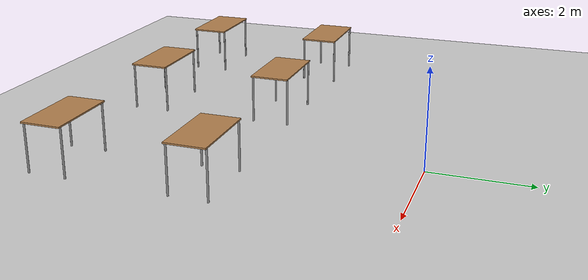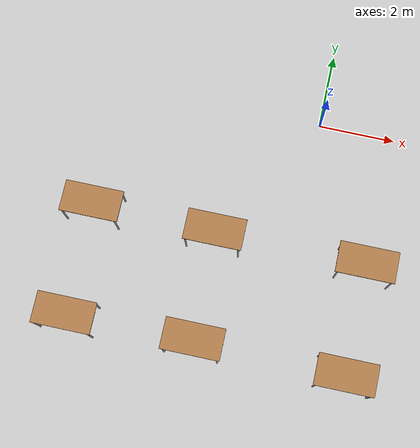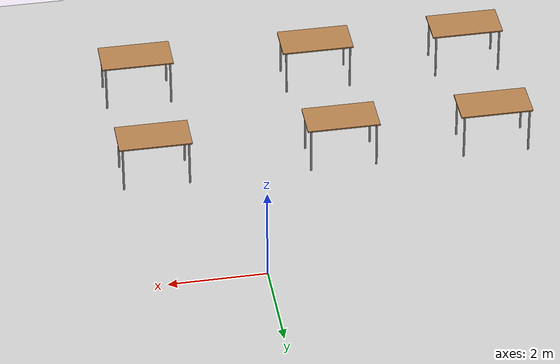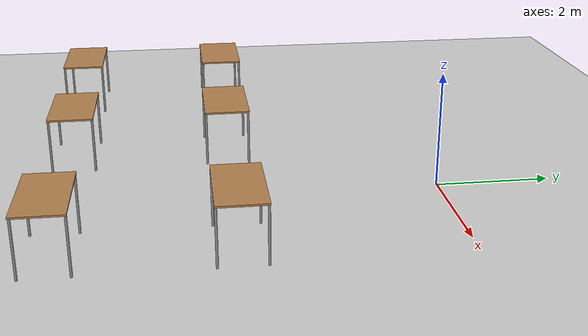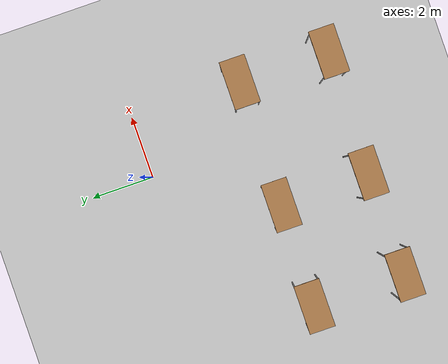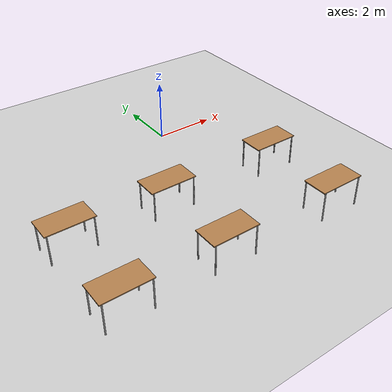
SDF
<sdf version="1.6">
 <world name="default">
  <model name="ground_plane">
   <static>1</static>
   <link name="link">
    <collision name="collision">
     <geometry><plane><normal>0 0 1</normal><size>100 100</size></plane></geometry>
     <surface>
      <contact><collide_bitmask>65535</collide_bitmask></contact>
      <friction><ode><mu>100</mu><mu2>50</mu2></ode></friction>
     </surface>
    </collision>
    <visual name="visual">
     <cast_shadows>0</cast_shadows>
     <geometry><plane><normal>0 0 1</normal><size>100 100</size></plane></geometry>
     <material>
      <script><uri>file://media/materials/scripts/gazebo.material</uri><name>Gazebo/Grey</name></script>
     </material>
    </visual>
   </link>
  </model>
  <model name="table_3">
   <static>1</static>
   <link name="link">
    <collision name="surface">
     <pose>0 0 1 0 -0 0</pose>
     <geometry><box><size>1.5 0.8 0.03</size></box></geometry>
     <surface><friction><ode><mu>0.6</mu><mu2>0.6</mu2></ode></friction></surface>
    </collision>
    <visual name="visual1">
     <pose>0 0 1 0 -0 0</pose>
     <geometry><box><size>1.5 0.8 0.03</size></box></geometry>
     <material>
      <script><uri>file://media/materials/scripts/gazebo.material</uri><name>Gazebo/Wood</name></script>
     </material>
    </visual>
    <collision name="front_left_leg">
     <pose>0.68 0.38 0.5 0 -0 0</pose>
     <geometry><cylinder><radius>0.02</radius><length>1</length></cylinder></geometry>
    </collision>
    <visual name="front_left_leg">
     <pose>0.68 0.38 0.5 0 -0 0</pose>
     <geometry><cylinder><radius>0.02</radius><length>1</length></cylinder></geometry>
     <material>
      <script><uri>file://media/materials/scripts/gazebo.material</uri><name>Gazebo/Grey</name></script>
     </material>
    </visual>
    <collision name="front_right_leg">
     <pose>0.68 -0.38 0.5 0 -0 0</pose>
     <geometry><cylinder><radius>0.02</radius><length>1</length></cylinder></geometry>
    </collision>
    <visual name="front_right_leg">
     <pose>0.68 -0.38 0.5 0 -0 0</pose>
     <geometry><cylinder><radius>0.02</radius><length>1</length></cylinder></geometry>
     <material>
      <script><uri>file://media/materials/scripts/gazebo.material</uri><name>Gazebo/Grey</name></script>
     </material>
    </visual>
    <collision name="back_right_leg">
     <pose>-0.68 -0.38 0.5 0 -0 0</pose>
     <geometry><cylinder><radius>0.02</radius><length>1</length></cylinder></geometry>
    </collision>
    <visual name="back_right_leg">
     <pose>-0.68 -0.38 0.5 0 -0 0</pose>
     <geometry><cylinder><radius>0.02</radius><length>1</length></cylinder></geometry>
     <material>
      <script><uri>file://media/materials/scripts/gazebo.material</uri><name>Gazebo/Grey</name></script>
     </material>
    </visual>
    <collision name="back_left_leg">
     <pose>-0.68 0.38 0.5 0 -0 0</pose>
     <geometry><cylinder><radius>0.02</radius><length>1</length></cylinder></geometry>
    </collision>
    <visual name="back_left_leg">
     <pose>-0.68 0.38 0.5 0 -0 0</pose>
     <geometry><cylinder><radius>0.02</radius><length>1</length></cylinder></geometry>
     <material>
      <script><uri>file://media/materials/scripts/gazebo.material</uri><name>Gazebo/Grey</name></script>
     </material>
    </visual>
   </link>
   <pose>1.7722 -6.37571 0 0 -0 0</pose>
  </model>
  <model name="table_5">
   <static>1</static>
   <link name="link">
    <collision name="surface">
     <pose>0 0 1 0 -0 0</pose>
     <geometry><box><size>1.5 0.8 0.03</size></box></geometry>
     <surface><friction><ode><mu>0.6</mu><mu2>0.6</mu2></ode></friction></surface>
    </collision>
    <visual name="visual1">
     <pose>0 0 1 0 -0 0</pose>
     <geometry><box><size>1.5 0.8 0.03</size></box></geometry>
     <material>
      <script><uri>file://media/materials/scripts/gazebo.material</uri><name>Gazebo/Wood</name></script>
     </material>
    </visual>
    <collision name="front_left_leg">
     <pose>0.68 0.38 0.5 0 -0 0</pose>
     <geometry><cylinder><radius>0.02</radius><length>1</length></cylinder></geometry>
    </collision>
    <visual name="front_left_leg">
     <pose>0.68 0.38 0.5 0 -0 0</pose>
     <geometry><cylinder><radius>0.02</radius><length>1</length></cylinder></geometry>
     <material>
      <script><uri>file://media/materials/scripts/gazebo.material</uri><name>Gazebo/Grey</name></script>
     </material>
    </visual>
    <collision name="front_right_leg">
     <pose>0.68 -0.38 0.5 0 -0 0</pose>
     <geometry><cylinder><radius>0.02</radius><length>1</length></cylinder></geometry>
    </collision>
    <visual name="front_right_leg">
     <pose>0.68 -0.38 0.5 0 -0 0</pose>
     <geometry><cylinder><radius>0.02</radius><length>1</length></cylinder></geometry>
     <material>
      <script><uri>file://media/materials/scripts/gazebo.material</uri><name>Gazebo/Grey</name></script>
     </material>
    </visual>
    <collision name="back_right_leg">
     <pose>-0.68 -0.38 0.5 0 -0 0</pose>
     <geometry><cylinder><radius>0.02</radius><length>1</length></cylinder></geometry>
    </collision>
    <visual name="back_right_leg">
     <pose>-0.68 -0.38 0.5 0 -0 0</pose>
     <geometry><cylinder><radius>0.02</radius><length>1</length></cylinder></geometry>
     <material>
      <script><uri>file://media/materials/scripts/gazebo.material</uri><name>Gazebo/Grey</name></script>
     </material>
    </visual>
    <collision name="back_left_leg">
     <pose>-0.68 0.38 0.5 0 -0 0</pose>
     <geometry><cylinder><radius>0.02</radius><length>1</length></cylinder></geometry>
    </collision>
    <visual name="back_left_leg">
     <pose>-0.68 0.38 0.5 0 -0 0</pose>
     <geometry><cylinder><radius>0.02</radius><length>1</length></cylinder></geometry>
     <material>
      <script><uri>file://media/materials/scripts/gazebo.material</uri><name>Gazebo/Grey</name></script>
     </material>
    </visual>
   </link>
   <pose>1.77864 -3.55993 0 0 -0 0</pose>
  </model>
  <model name="table_6">
   <static>1</static>
   <link name="link">
    <collision name="surface">
     <pose>0 0 1 0 -0 0</pose>
     <geometry><box><size>1.5 0.8 0.03</size></box></geometry>
     <surface><friction><ode><mu>0.6</mu><mu2>0.6</mu2></ode></friction></surface>
    </collision>
    <visual name="visual1">
     <pose>0 0 1 0 -0 0</pose>
     <geometry><box><size>1.5 0.8 0.03</size></box></geometry>
     <material>
      <script><uri>file://media/materials/scripts/gazebo.material</uri><name>Gazebo/Wood</name></script>
     </material>
    </visual>
    <collision name="front_left_leg">
     <pose>0.68 0.38 0.5 0 -0 0</pose>
     <geometry><cylinder><radius>0.02</radius><length>1</length></cylinder></geometry>
    </collision>
    <visual name="front_left_leg">
     <pose>0.68 0.38 0.5 0 -0 0</pose>
     <geometry><cylinder><radius>0.02</radius><length>1</length></cylinder></geometry>
     <material>
      <script><uri>file://media/materials/scripts/gazebo.material</uri><name>Gazebo/Grey</name></script>
     </material>
    </visual>
    <collision name="front_right_leg">
     <pose>0.68 -0.38 0.5 0 -0 0</pose>
     <geometry><cylinder><radius>0.02</radius><length>1</length></cylinder></geometry>
    </collision>
    <visual name="front_right_leg">
     <pose>0.68 -0.38 0.5 0 -0 0</pose>
     <geometry><cylinder><radius>0.02</radius><length>1</length></cylinder></geometry>
     <material>
      <script><uri>file://media/materials/scripts/gazebo.material</uri><name>Gazebo/Grey</name></script>
     </material>
    </visual>
    <collision name="back_right_leg">
     <pose>-0.68 -0.38 0.5 0 -0 0</pose>
     <geometry><cylinder><radius>0.02</radius><length>1</length></cylinder></geometry>
    </collision>
    <visual name="back_right_leg">
     <pose>-0.68 -0.38 0.5 0 -0 0</pose>
     <geometry><cylinder><radius>0.02</radius><length>1</length></cylinder></geometry>
     <material>
      <script><uri>file://media/materials/scripts/gazebo.material</uri><name>Gazebo/Grey</name></script>
     </material>
    </visual>
    <collision name="back_left_leg">
     <pose>-0.68 0.38 0.5 0 -0 0</pose>
     <geometry><cylinder><radius>0.02</radius><length>1</length></cylinder></geometry>
    </collision>
    <visual name="back_left_leg">
     <pose>-0.68 0.38 0.5 0 -0 0</pose>
     <geometry><cylinder><radius>0.02</radius><length>1</length></cylinder></geometry>
     <material>
      <script><uri>file://media/materials/scripts/gazebo.material</uri><name>Gazebo/Grey</name></script>
     </material>
    </visual>
   </link>
   <pose>-5.25921 -6.34689 0 0 -0 0</pose>
  </model>
  <model name="table_9">
   <static>1</static>
   <link name="link">
    <collision name="surface">
     <pose>0 0 1 0 -0 0</pose>
     <geometry><box><size>1.5 0.8 0.03</size></box></geometry>
     <surface><friction><ode><mu>0.6</mu><mu2>0.6</mu2></ode></friction></surface>
    </collision>
    <visual name="visual1">
     <pose>0 0 1 0 -0 0</pose>
     <geometry><box><size>1.5 0.8 0.03</size></box></geometry>
     <material>
      <script><uri>file://media/materials/scripts/gazebo.material</uri><name>Gazebo/Wood</name></script>
     </material>
    </visual>
    <collision name="front_left_leg">
     <pose>0.68 0.38 0.5 0 -0 0</pose>
     <geometry><cylinder><radius>0.02</radius><length>1</length></cylinder></geometry>
    </collision>
    <visual name="front_left_leg">
     <pose>0.68 0.38 0.5 0 -0 0</pose>
     <geometry><cylinder><radius>0.02</radius><length>1</length></cylinder></geometry>
     <material>
      <script><uri>file://media/materials/scripts/gazebo.material</uri><name>Gazebo/Grey</name></script>
     </material>
    </visual>
    <collision name="front_right_leg">
     <pose>0.68 -0.38 0.5 0 -0 0</pose>
     <geometry><cylinder><radius>0.02</radius><length>1</length></cylinder></geometry>
    </collision>
    <visual name="front_right_leg">
     <pose>0.68 -0.38 0.5 0 -0 0</pose>
     <geometry><cylinder><radius>0.02</radius><length>1</length></cylinder></geometry>
     <material>
      <script><uri>file://media/materials/scripts/gazebo.material</uri><name>Gazebo/Grey</name></script>
     </material>
    </visual>
    <collision name="back_right_leg">
     <pose>-0.68 -0.38 0.5 0 -0 0</pose>
     <geometry><cylinder><radius>0.02</radius><length>1</length></cylinder></geometry>
    </collision>
    <visual name="back_right_leg">
     <pose>-0.68 -0.38 0.5 0 -0 0</pose>
     <geometry><cylinder><radius>0.02</radius><length>1</length></cylinder></geometry>
     <material>
      <script><uri>file://media/materials/scripts/gazebo.material</uri><name>Gazebo/Grey</name></script>
     </material>
    </visual>
    <collision name="back_left_leg">
     <pose>-0.68 0.38 0.5 0 -0 0</pose>
     <geometry><cylinder><radius>0.02</radius><length>1</length></cylinder></geometry>
    </collision>
    <visual name="back_left_leg">
     <pose>-0.68 0.38 0.5 0 -0 0</pose>
     <geometry><cylinder><radius>0.02</radius><length>1</length></cylinder></geometry>
     <material>
      <script><uri>file://media/materials/scripts/gazebo.material</uri><name>Gazebo/Grey</name></script>
     </material>
    </visual>
   </link>
   <pose>-5.27613 -3.47725 0 0 -0 0</pose>
  </model>
  <model name="table_10">
   <static>1</static>
   <link name="link">
    <collision name="surface">
     <pose>0 0 1 0 -0 0</pose>
     <geometry><box><size>1.5 0.8 0.03</size></box></geometry>
     <surface><friction><ode><mu>0.6</mu><mu2>0.6</mu2></ode></friction></surface>
    </collision>
    <visual name="visual1">
     <pose>0 0 1 0 -0 0</pose>
     <geometry><box><size>1.5 0.8 0.03</size></box></geometry>
     <material>
      <script><uri>file://media/materials/scripts/gazebo.material</uri><name>Gazebo/Wood</name></script>
     </material>
    </visual>
    <collision name="front_left_leg">
     <pose>0.68 0.38 0.5 0 -0 0</pose>
     <geometry><cylinder><radius>0.02</radius><length>1</length></cylinder></geometry>
    </collision>
    <visual name="front_left_leg">
     <pose>0.68 0.38 0.5 0 -0 0</pose>
     <geometry><cylinder><radius>0.02</radius><length>1</length></cylinder></geometry>
     <material>
      <script><uri>file://media/materials/scripts/gazebo.material</uri><name>Gazebo/Grey</name></script>
     </material>
    </visual>
    <collision name="front_right_leg">
     <pose>0.68 -0.38 0.5 0 -0 0</pose>
     <geometry><cylinder><radius>0.02</radius><length>1</length></cylinder></geometry>
    </collision>
    <visual name="front_right_leg">
     <pose>0.68 -0.38 0.5 0 -0 0</pose>
     <geometry><cylinder><radius>0.02</radius><length>1</length></cylinder></geometry>
     <material>
      <script><uri>file://media/materials/scripts/gazebo.material</uri><name>Gazebo/Grey</name></script>
     </material>
    </visual>
    <collision name="back_right_leg">
     <pose>-0.68 -0.38 0.5 0 -0 0</pose>
     <geometry><cylinder><radius>0.02</radius><length>1</length></cylinder></geometry>
    </collision>
    <visual name="back_right_leg">
     <pose>-0.68 -0.38 0.5 0 -0 0</pose>
     <geometry><cylinder><radius>0.02</radius><length>1</length></cylinder></geometry>
     <material>
      <script><uri>file://media/materials/scripts/gazebo.material</uri><name>Gazebo/Grey</name></script>
     </material>
    </visual>
    <collision name="back_left_leg">
     <pose>-0.68 0.38 0.5 0 -0 0</pose>
     <geometry><cylinder><radius>0.02</radius><length>1</length></cylinder></geometry>
    </collision>
    <visual name="back_left_leg">
     <pose>-0.68 0.38 0.5 0 -0 0</pose>
     <geometry><cylinder><radius>0.02</radius><length>1</length></cylinder></geometry>
     <material>
      <script><uri>file://media/materials/scripts/gazebo.material</uri><name>Gazebo/Grey</name></script>
     </material>
    </visual>
   </link>
   <pose>-2.03953 -6.30852 0 0 -0 0</pose>
  </model>
  <model name="table_13">
   <static>1</static>
   <link name="link">
    <collision name="surface">
     <pose>0 0 1 0 -0 0</pose>
     <geometry><box><size>1.5 0.8 0.03</size></box></geometry>
     <surface><friction><ode><mu>0.6</mu><mu2>0.6</mu2></ode></friction></surface>
    </collision>
    <visual name="visual1">
     <pose>0 0 1 0 -0 0</pose>
     <geometry><box><size>1.5 0.8 0.03</size></box></geometry>
     <material>
      <script><uri>file://media/materials/scripts/gazebo.material</uri><name>Gazebo/Wood</name></script>
     </material>
    </visual>
    <collision name="front_left_leg">
     <pose>0.68 0.38 0.5 0 -0 0</pose>
     <geometry><cylinder><radius>0.02</radius><length>1</length></cylinder></geometry>
    </collision>
    <visual name="front_left_leg">
     <pose>0.68 0.38 0.5 0 -0 0</pose>
     <geometry><cylinder><radius>0.02</radius><length>1</length></cylinder></geometry>
     <material>
      <script><uri>file://media/materials/scripts/gazebo.material</uri><name>Gazebo/Grey</name></script>
     </material>
    </visual>
    <collision name="front_right_leg">
     <pose>0.68 -0.38 0.5 0 -0 0</pose>
     <geometry><cylinder><radius>0.02</radius><length>1</length></cylinder></geometry>
    </collision>
    <visual name="front_right_leg">
     <pose>0.68 -0.38 0.5 0 -0 0</pose>
     <geometry><cylinder><radius>0.02</radius><length>1</length></cylinder></geometry>
     <material>
      <script><uri>file://media/materials/scripts/gazebo.material</uri><name>Gazebo/Grey</name></script>
     </material>
    </visual>
    <collision name="back_right_leg">
     <pose>-0.68 -0.38 0.5 0 -0 0</pose>
     <geometry><cylinder><radius>0.02</radius><length>1</length></cylinder></geometry>
    </collision>
    <visual name="back_right_leg">
     <pose>-0.68 -0.38 0.5 0 -0 0</pose>
     <geometry><cylinder><radius>0.02</radius><length>1</length></cylinder></geometry>
     <material>
      <script><uri>file://media/materials/scripts/gazebo.material</uri><name>Gazebo/Grey</name></script>
     </material>
    </visual>
    <collision name="back_left_leg">
     <pose>-0.68 0.38 0.5 0 -0 0</pose>
     <geometry><cylinder><radius>0.02</radius><length>1</length></cylinder></geometry>
    </collision>
    <visual name="back_left_leg">
     <pose>-0.68 0.38 0.5 0 -0 0</pose>
     <geometry><cylinder><radius>0.02</radius><length>1</length></cylinder></geometry>
     <material>
      <script><uri>file://media/materials/scripts/gazebo.material</uri><name>Gazebo/Grey</name></script>
     </material>
    </visual>
   </link>
   <pose>-2.09397 -3.53851 0 0 -0 0</pose>
  </model>
 </world>
</sdf>
